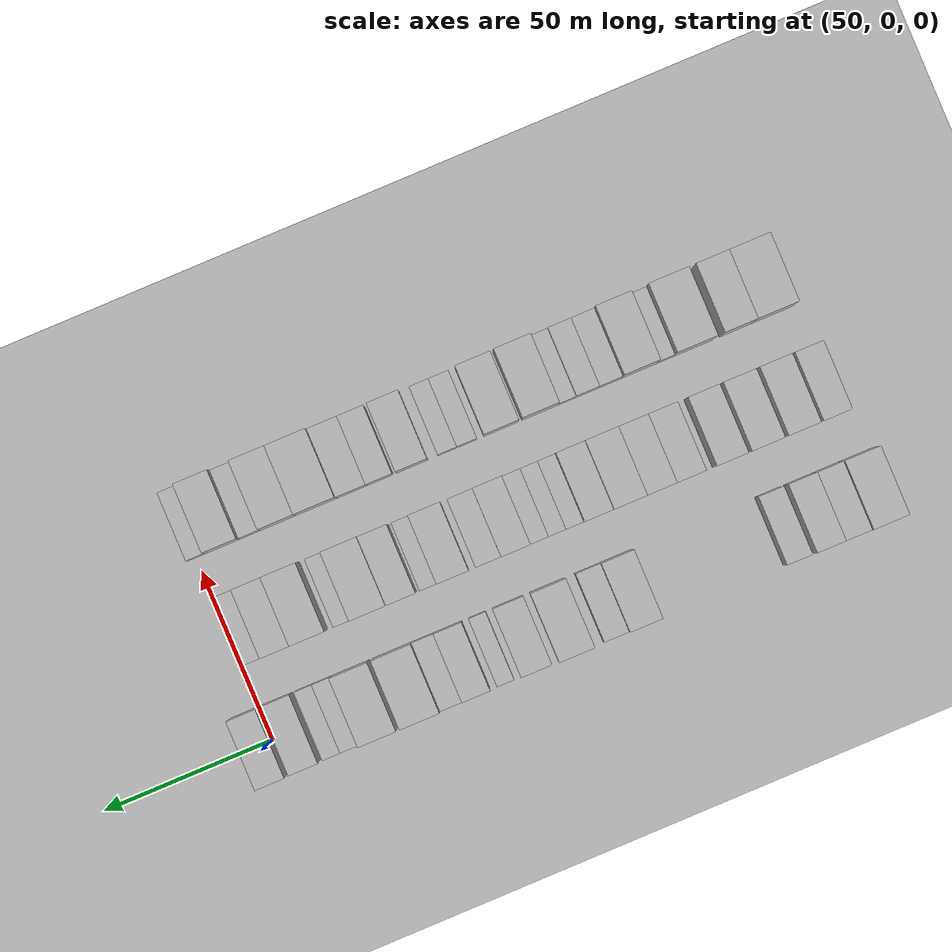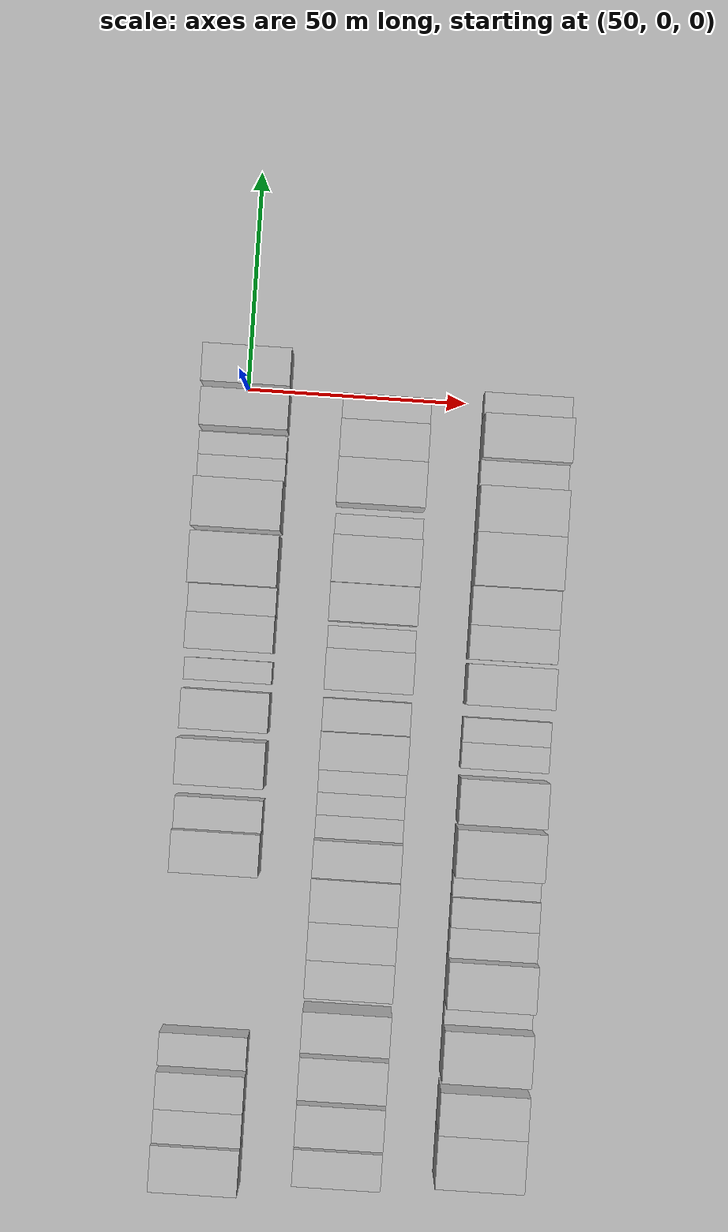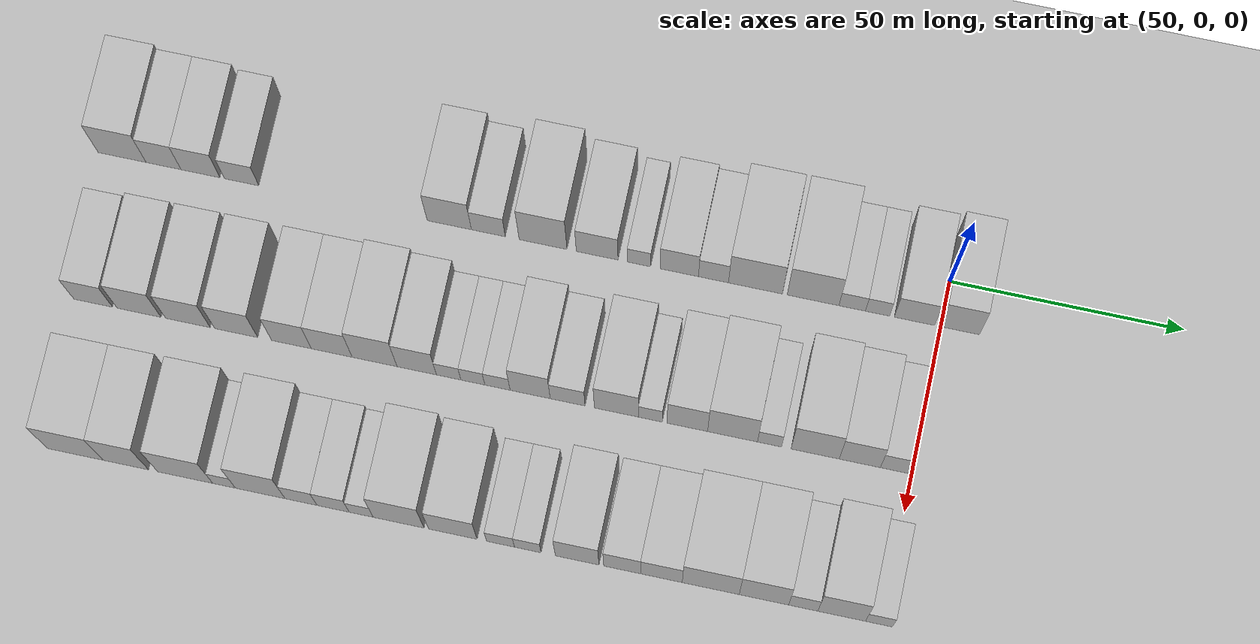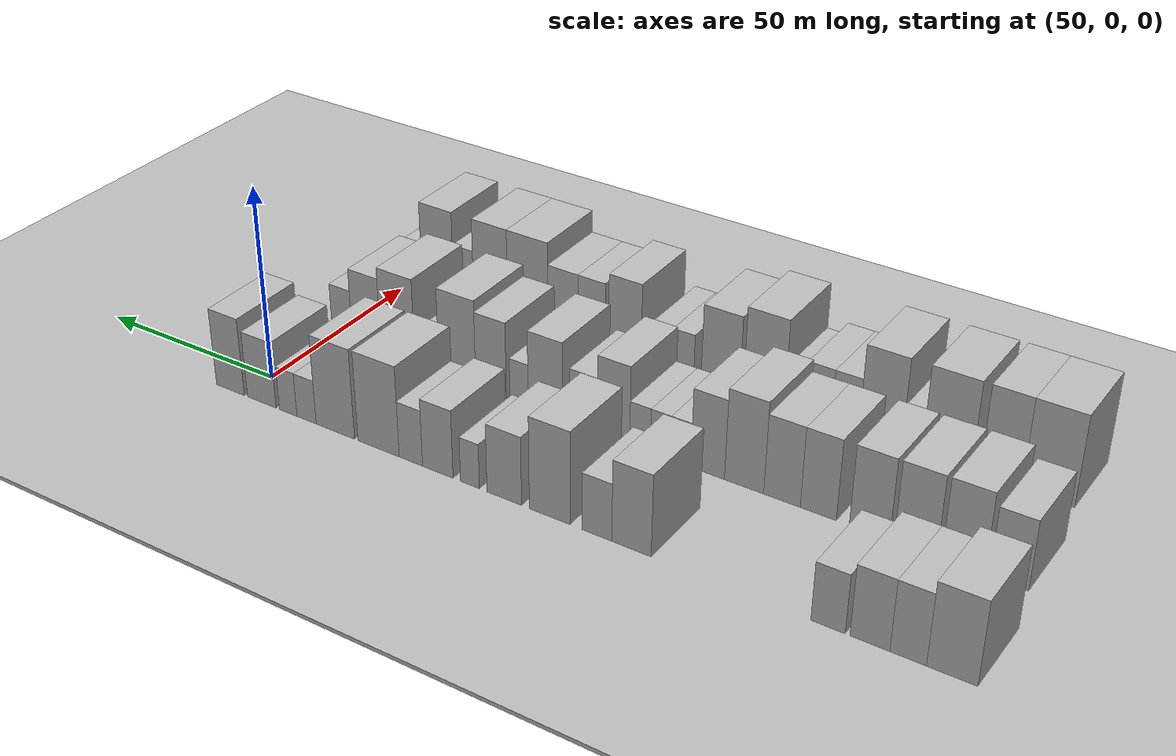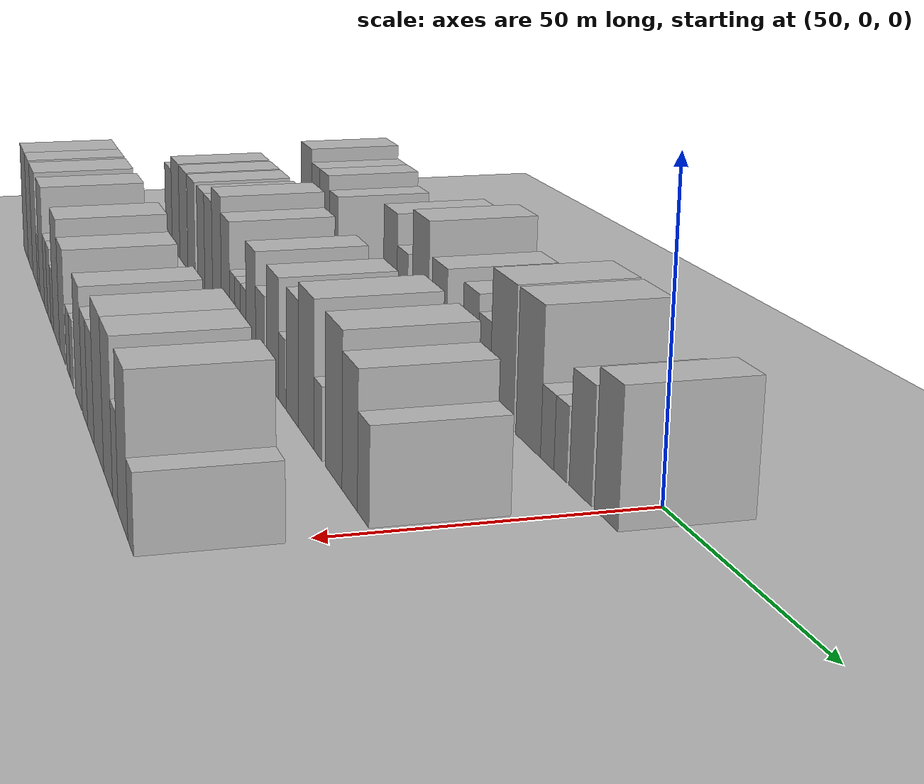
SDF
<sdf version="1.6">
 <world name="default">
  <include><name>ground_plane_1</name><uri>model://HANNAS_ground_plane</uri></include>
  <include>
   <name>ground_plane_2</name>
   <uri>model://HANNAS_ground_plane</uri>
   <pose>100 0 0  0 0 0</pose>
  </include>
  <model name="building_19">
   <static>1</static>
   <pose>50.0000 -176.8007 0 0.000000 0.000000 0.000000</pose>
   <link name="link">
    <pose>0 0 10.50 0 0 0</pose>
    <collision name="collision"><geometry><box><size>20.0000 10.4769 21.0000</size></box></geometry></collision>
    <visual name="visual">
     <cast_shadows>0</cast_shadows>
     <geometry><box><size>20.0000 10.4769 21.0000</size></box></geometry>
     <material>
      <script>
       <uri>model://HANNAS_wall/materials/scripts</uri>
       <uri>model://HANNAS_wall/materials/textures</uri>
       <name>vrc/HANNAS_wall</name>
      </script>
     </material>
    </visual>
   </link>
  </model>
  <model name="building_20">
   <static>1</static>
   <pose>50.0000 -167.7494 0 0.000000 0.000000 0.000000</pose>
   <link name="link">
    <pose>0 0 9.00 0 0 0</pose>
    <collision name="collision"><geometry><box><size>20.0000 7.6257 18.0000</size></box></geometry></collision>
    <visual name="visual">
     <cast_shadows>0</cast_shadows>
     <geometry><box><size>20.0000 7.6257 18.0000</size></box></geometry>
     <material>
      <script>
       <uri>model://HANNAS_wall/materials/scripts</uri>
       <uri>model://HANNAS_wall/materials/textures</uri>
       <name>vrc/HANNAS_wall</name>
      </script>
     </material>
    </visual>
   </link>
  </model>
  <model name="building_21">
   <static>1</static>
   <pose>50.0000 -159.7060 0 0.000000 0.000000 0.000000</pose>
   <link name="link">
    <pose>0 0 9.00 0 0 0</pose>
    <collision name="collision"><geometry><box><size>20.0000 8.4612 18.0000</size></box></geometry></collision>
    <visual name="visual">
     <cast_shadows>0</cast_shadows>
     <geometry><box><size>20.0000 8.4612 18.0000</size></box></geometry>
     <material>
      <script>
       <uri>model://HANNAS_wall/materials/scripts</uri>
       <uri>model://HANNAS_wall/materials/textures</uri>
       <name>vrc/HANNAS_wall</name>
      </script>
     </material>
    </visual>
   </link>
  </model>
  <model name="building_22">
   <static>1</static>
   <pose>50.0000 -150.7379 0 0.000000 0.000000 0.000000</pose>
   <link name="link">
    <pose>0 0 7.50 0 0 0</pose>
    <collision name="collision"><geometry><box><size>20.0000 7.4750 15.0000</size></box></geometry></collision>
    <visual name="visual">
     <cast_shadows>0</cast_shadows>
     <geometry><box><size>20.0000 7.4750 15.0000</size></box></geometry>
     <material>
      <script>
       <uri>model://HANNAS_wall/materials/scripts</uri>
       <uri>model://HANNAS_wall/materials/textures</uri>
       <name>vrc/HANNAS_wall</name>
      </script>
     </material>
    </visual>
   </link>
  </model>
  <model name="building_23">
   <static>1</static>
   <pose>50.0000 -105.6504 0 0.000000 0.000000 0.000000</pose>
   <link name="link">
    <pose>0 0 10.50 0 0 0</pose>
    <collision name="collision"><geometry><box><size>20.0000 9.5667 21.0000</size></box></geometry></collision>
    <visual name="visual">
     <cast_shadows>0</cast_shadows>
     <geometry><box><size>20.0000 9.5667 21.0000</size></box></geometry>
     <material>
      <script>
       <uri>model://HANNAS_wall/materials/scripts</uri>
       <uri>model://HANNAS_wall/materials/textures</uri>
       <name>vrc/HANNAS_wall</name>
      </script>
     </material>
    </visual>
   </link>
  </model>
  <model name="building_24">
   <static>1</static>
   <pose>50.0000 -97.2119 0 0.000000 0.000000 0.000000</pose>
   <link name="link">
    <pose>0 0 7.50 0 0 0</pose>
    <collision name="collision"><geometry><box><size>20.0000 7.3102 15.0000</size></box></geometry></collision>
    <visual name="visual">
     <cast_shadows>0</cast_shadows>
     <geometry><box><size>20.0000 7.3102 15.0000</size></box></geometry>
     <material>
      <script>
       <uri>model://HANNAS_wall/materials/scripts</uri>
       <uri>model://HANNAS_wall/materials/textures</uri>
       <name>vrc/HANNAS_wall</name>
      </script>
     </material>
    </visual>
   </link>
  </model>
  <model name="building_25">
   <static>1</static>
   <pose>50.0000 -85.3926 0 0.000000 0.000000 0.000000</pose>
   <link name="link">
    <pose>0 0 12.00 0 0 0</pose>
    <collision name="collision"><geometry><box><size>20.0000 10.3284 24.0000</size></box></geometry></collision>
    <visual name="visual">
     <cast_shadows>0</cast_shadows>
     <geometry><box><size>20.0000 10.3284 24.0000</size></box></geometry>
     <material>
      <script>
       <uri>model://HANNAS_wall/materials/scripts</uri>
       <uri>model://HANNAS_wall/materials/textures</uri>
       <name>vrc/HANNAS_wall</name>
      </script>
     </material>
    </visual>
   </link>
  </model>
  <model name="building_26">
   <static>1</static>
   <pose>50.0000 -73.7339 0 0.000000 0.000000 0.000000</pose>
   <link name="link">
    <pose>0 0 9.00 0 0 0</pose>
    <collision name="collision"><geometry><box><size>20.0000 8.9888 18.0000</size></box></geometry></collision>
    <visual name="visual">
     <cast_shadows>0</cast_shadows>
     <geometry><box><size>20.0000 8.9888 18.0000</size></box></geometry>
     <material>
      <script>
       <uri>model://HANNAS_wall/materials/scripts</uri>
       <uri>model://HANNAS_wall/materials/textures</uri>
       <name>vrc/HANNAS_wall</name>
      </script>
     </material>
    </visual>
   </link>
  </model>
  <model name="building_27">
   <static>1</static>
   <pose>50.0000 -64.7259 0 0.000000 0.000000 0.000000</pose>
   <link name="link">
    <pose>0 0 6.00 0 0 0</pose>
    <collision name="collision"><geometry><box><size>20.0000 5.0272 12.0000</size></box></geometry></collision>
    <visual name="visual">
     <cast_shadows>0</cast_shadows>
     <geometry><box><size>20.0000 5.0272 12.0000</size></box></geometry>
     <material>
      <script>
       <uri>model://HANNAS_wall/materials/scripts</uri>
       <uri>model://HANNAS_wall/materials/textures</uri>
       <name>vrc/HANNAS_wall</name>
      </script>
     </material>
    </visual>
   </link>
  </model>
  <model name="building_28">
   <static>1</static>
   <pose>50.0000 -56.0772 0 0.000000 0.000000 0.000000</pose>
   <link name="link">
    <pose>0 0 9.00 0 0 0</pose>
    <collision name="collision"><geometry><box><size>20.0000 8.2703 18.0000</size></box></geometry></collision>
    <visual name="visual">
     <cast_shadows>0</cast_shadows>
     <geometry><box><size>20.0000 8.2703 18.0000</size></box></geometry>
     <material>
      <script>
       <uri>model://HANNAS_wall/materials/scripts</uri>
       <uri>model://HANNAS_wall/materials/textures</uri>
       <name>vrc/HANNAS_wall</name>
      </script>
     </material>
    </visual>
   </link>
  </model>
  <model name="building_29">
   <static>1</static>
   <pose>50.0000 -48.7248 0 0.000000 0.000000 0.000000</pose>
   <link name="link">
    <pose>0 0 7.50 0 0 0</pose>
    <collision name="collision"><geometry><box><size>20.0000 6.4346 15.0000</size></box></geometry></collision>
    <visual name="visual">
     <cast_shadows>0</cast_shadows>
     <geometry><box><size>20.0000 6.4346 15.0000</size></box></geometry>
     <material>
      <script>
       <uri>model://HANNAS_wall/materials/scripts</uri>
       <uri>model://HANNAS_wall/materials/textures</uri>
       <name>vrc/HANNAS_wall</name>
      </script>
     </material>
    </visual>
   </link>
  </model>
  <model name="building_30">
   <static>1</static>
   <pose>50.0000 -39.7111 0 0.000000 0.000000 0.000000</pose>
   <link name="link">
    <pose>0 0 12.00 0 0 0</pose>
    <collision name="collision"><geometry><box><size>20.0000 11.5926 24.0000</size></box></geometry></collision>
    <visual name="visual">
     <cast_shadows>0</cast_shadows>
     <geometry><box><size>20.0000 11.5926 24.0000</size></box></geometry>
     <material>
      <script>
       <uri>model://HANNAS_wall/materials/scripts</uri>
       <uri>model://HANNAS_wall/materials/textures</uri>
       <name>vrc/HANNAS_wall</name>
      </script>
     </material>
    </visual>
   </link>
  </model>
  <model name="building_31">
   <static>1</static>
   <pose>50.0000 -27.3773 0 0.000000 0.000000 0.000000</pose>
   <link name="link">
    <pose>0 0 12.00 0 0 0</pose>
    <collision name="collision"><geometry><box><size>20.0000 11.0751 24.0000</size></box></geometry></collision>
    <visual name="visual">
     <cast_shadows>0</cast_shadows>
     <geometry><box><size>20.0000 11.0751 24.0000</size></box></geometry>
     <material>
      <script>
       <uri>model://HANNAS_wall/materials/scripts</uri>
       <uri>model://HANNAS_wall/materials/textures</uri>
       <name>vrc/HANNAS_wall</name>
      </script>
     </material>
    </visual>
   </link>
  </model>
  <model name="building_32">
   <static>1</static>
   <pose>50.0000 -19.0092 0 0.000000 0.000000 0.000000</pose>
   <link name="link">
    <pose>0 0 6.00 0 0 0</pose>
    <collision name="collision"><geometry><box><size>20.0000 5.6609 12.0000</size></box></geometry></collision>
    <visual name="visual">
     <cast_shadows>0</cast_shadows>
     <geometry><box><size>20.0000 5.6609 12.0000</size></box></geometry>
     <material>
      <script>
       <uri>model://HANNAS_wall/materials/scripts</uri>
       <uri>model://HANNAS_wall/materials/textures</uri>
       <name>vrc/HANNAS_wall</name>
      </script>
     </material>
    </visual>
   </link>
  </model>
  <model name="building_33">
   <static>1</static>
   <pose>50.0000 -13.5868 0 0.000000 0.000000 0.000000</pose>
   <link name="link">
    <pose>0 0 6.00 0 0 0</pose>
    <collision name="collision"><geometry><box><size>20.0000 5.1841 12.0000</size></box></geometry></collision>
    <visual name="visual">
     <cast_shadows>0</cast_shadows>
     <geometry><box><size>20.0000 5.1841 12.0000</size></box></geometry>
     <material>
      <script>
       <uri>model://HANNAS_wall/materials/scripts</uri>
       <uri>model://HANNAS_wall/materials/textures</uri>
       <name>vrc/HANNAS_wall</name>
      </script>
     </material>
    </visual>
   </link>
  </model>
  <model name="building_34">
   <static>1</static>
   <pose>50.0000 -5.6855 0 0.000000 0.000000 0.000000</pose>
   <link name="link">
    <pose>0 0 9.00 0 0 0</pose>
    <collision name="collision"><geometry><box><size>20.0000 8.6185 18.0000</size></box></geometry></collision>
    <visual name="visual">
     <cast_shadows>0</cast_shadows>
     <geometry><box><size>20.0000 8.6185 18.0000</size></box></geometry>
     <material>
      <script>
       <uri>model://HANNAS_wall/materials/scripts</uri>
       <uri>model://HANNAS_wall/materials/textures</uri>
       <name>vrc/HANNAS_wall</name>
      </script>
     </material>
    </visual>
   </link>
  </model>
  <model name="building_35">
   <static>1</static>
   <pose>50.0000 3.8920 0 0.000000 0.000000 0.000000</pose>
   <link name="link">
    <pose>0 0 10.50 0 0 0</pose>
    <collision name="collision"><geometry><box><size>20.0000 8.5365 21.0000</size></box></geometry></collision>
    <visual name="visual">
     <cast_shadows>0</cast_shadows>
     <geometry><box><size>20.0000 8.5365 21.0000</size></box></geometry>
     <material>
      <script>
       <uri>model://HANNAS_wall/materials/scripts</uri>
       <uri>model://HANNAS_wall/materials/textures</uri>
       <name>vrc/HANNAS_wall</name>
      </script>
     </material>
    </visual>
   </link>
  </model>
  <model name="building_96">
   <static>1</static>
   <pose>82.0000 -175.0363 0 0.000000 0.000000 0.000000</pose>
   <link name="link">
    <pose>0 0 9.00 0 0 0</pose>
    <collision name="collision"><geometry><box><size>20.0000 8.3634 18.0000</size></box></geometry></collision>
    <visual name="visual">
     <cast_shadows>0</cast_shadows>
     <geometry><box><size>20.0000 8.3634 18.0000</size></box></geometry>
     <material>
      <script>
       <uri>model://HANNAS_wall/materials/scripts</uri>
       <uri>model://HANNAS_wall/materials/textures</uri>
       <name>vrc/HANNAS_wall</name>
      </script>
     </material>
    </visual>
   </link>
  </model>
  <model name="building_97">
   <static>1</static>
   <pose>82.0000 -165.1223 0 0.000000 0.000000 0.000000</pose>
   <link name="link">
    <pose>0 0 10.50 0 0 0</pose>
    <collision name="collision"><geometry><box><size>20.0000 9.4647 21.0000</size></box></geometry></collision>
    <visual name="visual">
     <cast_shadows>0</cast_shadows>
     <geometry><box><size>20.0000 9.4647 21.0000</size></box></geometry>
     <material>
      <script>
       <uri>model://HANNAS_wall/materials/scripts</uri>
       <uri>model://HANNAS_wall/materials/textures</uri>
       <name>vrc/HANNAS_wall</name>
      </script>
     </material>
    </visual>
   </link>
  </model>
  <model name="building_98">
   <static>1</static>
   <pose>82.0000 -154.5868 0 0.000000 0.000000 0.000000</pose>
   <link name="link">
    <pose>0 0 10.50 0 0 0</pose>
    <collision name="collision"><geometry><box><size>20.0000 9.6063 21.0000</size></box></geometry></collision>
    <visual name="visual">
     <cast_shadows>0</cast_shadows>
     <geometry><box><size>20.0000 9.6063 21.0000</size></box></geometry>
     <material>
      <script>
       <uri>model://HANNAS_wall/materials/scripts</uri>
       <uri>model://HANNAS_wall/materials/textures</uri>
       <name>vrc/HANNAS_wall</name>
      </script>
     </material>
    </visual>
   </link>
  </model>
  <model name="building_99">
   <static>1</static>
   <pose>82.0000 -144.1634 0 0.000000 0.000000 0.000000</pose>
   <link name="link">
    <pose>0 0 10.50 0 0 0</pose>
    <collision name="collision"><geometry><box><size>20.0000 9.2406 21.0000</size></box></geometry></collision>
    <visual name="visual">
     <cast_shadows>0</cast_shadows>
     <geometry><box><size>20.0000 9.2406 21.0000</size></box></geometry>
     <material>
      <script>
       <uri>model://HANNAS_wall/materials/scripts</uri>
       <uri>model://HANNAS_wall/materials/textures</uri>
       <name>vrc/HANNAS_wall</name>
      </script>
     </material>
    </visual>
   </link>
  </model>
  <model name="building_100">
   <static>1</static>
   <pose>82.0000 -132.2857 0 0.000000 0.000000 0.000000</pose>
   <link name="link">
    <pose>0 0 10.50 0 0 0</pose>
    <collision name="collision"><geometry><box><size>20.0000 8.5148 21.0000</size></box></geometry></collision>
    <visual name="visual">
     <cast_shadows>0</cast_shadows>
     <geometry><box><size>20.0000 8.5148 21.0000</size></box></geometry>
     <material>
      <script>
       <uri>model://HANNAS_wall/materials/scripts</uri>
       <uri>model://HANNAS_wall/materials/textures</uri>
       <name>vrc/HANNAS_wall</name>
      </script>
     </material>
    </visual>
   </link>
  </model>
  <model name="building_101">
   <static>1</static>
   <pose>82.0000 -123.6333 0 0.000000 0.000000 0.000000</pose>
   <link name="link">
    <pose>0 0 10.50 0 0 0</pose>
    <collision name="collision"><geometry><box><size>20.0000 8.7900 21.0000</size></box></geometry></collision>
    <visual name="visual">
     <cast_shadows>0</cast_shadows>
     <geometry><box><size>20.0000 8.7900 21.0000</size></box></geometry>
     <material>
      <script>
       <uri>model://HANNAS_wall/materials/scripts</uri>
       <uri>model://HANNAS_wall/materials/textures</uri>
       <name>vrc/HANNAS_wall</name>
      </script>
     </material>
    </visual>
   </link>
  </model>
  <model name="building_102">
   <static>1</static>
   <pose>82.0000 -114.4189 0 0.000000 0.000000 0.000000</pose>
   <link name="link">
    <pose>0 0 12.00 0 0 0</pose>
    <collision name="collision"><geometry><box><size>20.0000 9.6388 24.0000</size></box></geometry></collision>
    <visual name="visual">
     <cast_shadows>0</cast_shadows>
     <geometry><box><size>20.0000 9.6388 24.0000</size></box></geometry>
     <material>
      <script>
       <uri>model://HANNAS_wall/materials/scripts</uri>
       <uri>model://HANNAS_wall/materials/textures</uri>
       <name>vrc/HANNAS_wall</name>
      </script>
     </material>
    </visual>
   </link>
  </model>
  <model name="building_103">
   <static>1</static>
   <pose>82.0000 -105.3723 0 0.000000 0.000000 0.000000</pose>
   <link name="link">
    <pose>0 0 10.50 0 0 0</pose>
    <collision name="collision"><geometry><box><size>20.0000 8.4544 21.0000</size></box></geometry></collision>
    <visual name="visual">
     <cast_shadows>0</cast_shadows>
     <geometry><box><size>20.0000 8.4544 21.0000</size></box></geometry>
     <material>
      <script>
       <uri>model://HANNAS_wall/materials/scripts</uri>
       <uri>model://HANNAS_wall/materials/textures</uri>
       <name>vrc/HANNAS_wall</name>
      </script>
     </material>
    </visual>
   </link>
  </model>
  <model name="building_104">
   <static>1</static>
   <pose>82.0000 -98.5314 0 0.000000 0.000000 0.000000</pose>
   <link name="link">
    <pose>0 0 6.00 0 0 0</pose>
    <collision name="collision"><geometry><box><size>20.0000 5.2274 12.0000</size></box></geometry></collision>
    <visual name="visual">
     <cast_shadows>0</cast_shadows>
     <geometry><box><size>20.0000 5.2274 12.0000</size></box></geometry>
     <material>
      <script>
       <uri>model://HANNAS_wall/materials/scripts</uri>
       <uri>model://HANNAS_wall/materials/textures</uri>
       <name>vrc/HANNAS_wall</name>
      </script>
     </material>
    </visual>
   </link>
  </model>
  <model name="building_105">
   <static>1</static>
   <pose>82.0000 -93.3625 0 0.000000 0.000000 0.000000</pose>
   <link name="link">
    <pose>0 0 6.00 0 0 0</pose>
    <collision name="collision"><geometry><box><size>20.0000 5.1104 12.0000</size></box></geometry></collision>
    <visual name="visual">
     <cast_shadows>0</cast_shadows>
     <geometry><box><size>20.0000 5.1104 12.0000</size></box></geometry>
     <material>
      <script>
       <uri>model://HANNAS_wall/materials/scripts</uri>
       <uri>model://HANNAS_wall/materials/textures</uri>
       <name>vrc/HANNAS_wall</name>
      </script>
     </material>
    </visual>
   </link>
  </model>
  <model name="building_106">
   <static>1</static>
   <pose>82.0000 -88.1017 0 0.000000 0.000000 0.000000</pose>
   <link name="link">
    <pose>0 0 6.00 0 0 0</pose>
    <collision name="collision"><geometry><box><size>20.0000 5.4112 12.0000</size></box></geometry></collision>
    <visual name="visual">
     <cast_shadows>0</cast_shadows>
     <geometry><box><size>20.0000 5.4112 12.0000</size></box></geometry>
     <material>
      <script>
       <uri>model://HANNAS_wall/materials/scripts</uri>
       <uri>model://HANNAS_wall/materials/textures</uri>
       <name>vrc/HANNAS_wall</name>
      </script>
     </material>
    </visual>
   </link>
  </model>
  <model name="building_107">
   <static>1</static>
   <pose>82.0000 -81.1191 0 0.000000 0.000000 0.000000</pose>
   <link name="link">
    <pose>0 0 10.50 0 0 0</pose>
    <collision name="collision"><geometry><box><size>20.0000 8.5541 21.0000</size></box></geometry></collision>
    <visual name="visual">
     <cast_shadows>0</cast_shadows>
     <geometry><box><size>20.0000 8.5541 21.0000</size></box></geometry>
     <material>
      <script>
       <uri>model://HANNAS_wall/materials/scripts</uri>
       <uri>model://HANNAS_wall/materials/textures</uri>
       <name>vrc/HANNAS_wall</name>
      </script>
     </material>
    </visual>
   </link>
  </model>
  <model name="building_108">
   <static>1</static>
   <pose>82.0000 -73.1270 0 0.000000 0.000000 0.000000</pose>
   <link name="link">
    <pose>0 0 7.50 0 0 0</pose>
    <collision name="collision"><geometry><box><size>20.0000 7.4301 15.0000</size></box></geometry></collision>
    <visual name="visual">
     <cast_shadows>0</cast_shadows>
     <geometry><box><size>20.0000 7.4301 15.0000</size></box></geometry>
     <material>
      <script>
       <uri>model://HANNAS_wall/materials/scripts</uri>
       <uri>model://HANNAS_wall/materials/textures</uri>
       <name>vrc/HANNAS_wall</name>
      </script>
     </material>
    </visual>
   </link>
  </model>
  <model name="building_109">
   <static>1</static>
   <pose>82.0000 -62.7336 0 0.000000 0.000000 0.000000</pose>
   <link name="link">
    <pose>0 0 10.50 0 0 0</pose>
    <collision name="collision"><geometry><box><size>20.0000 9.3566 21.0000</size></box></geometry></collision>
    <visual name="visual">
     <cast_shadows>0</cast_shadows>
     <geometry><box><size>20.0000 9.3566 21.0000</size></box></geometry>
     <material>
      <script>
       <uri>model://HANNAS_wall/materials/scripts</uri>
       <uri>model://HANNAS_wall/materials/textures</uri>
       <name>vrc/HANNAS_wall</name>
      </script>
     </material>
    </visual>
   </link>
  </model>
  <model name="building_110">
   <static>1</static>
   <pose>82.0000 -55.5170 0 0.000000 0.000000 0.000000</pose>
   <link name="link">
    <pose>0 0 6.00 0 0 0</pose>
    <collision name="collision"><geometry><box><size>20.0000 5.0767 12.0000</size></box></geometry></collision>
    <visual name="visual">
     <cast_shadows>0</cast_shadows>
     <geometry><box><size>20.0000 5.0767 12.0000</size></box></geometry>
     <material>
      <script>
       <uri>model://HANNAS_wall/materials/scripts</uri>
       <uri>model://HANNAS_wall/materials/textures</uri>
       <name>vrc/HANNAS_wall</name>
      </script>
     </material>
    </visual>
   </link>
  </model>
  <model name="building_111">
   <static>1</static>
   <pose>82.0000 -47.6541 0 0.000000 0.000000 0.000000</pose>
   <link name="link">
    <pose>0 0 10.50 0 0 0</pose>
    <collision name="collision"><geometry><box><size>20.0000 8.6492 21.0000</size></box></geometry></collision>
    <visual name="visual">
     <cast_shadows>0</cast_shadows>
     <geometry><box><size>20.0000 8.6492 21.0000</size></box></geometry>
     <material>
      <script>
       <uri>model://HANNAS_wall/materials/scripts</uri>
       <uri>model://HANNAS_wall/materials/textures</uri>
       <name>vrc/HANNAS_wall</name>
      </script>
     </material>
    </visual>
   </link>
  </model>
  <model name="building_112">
   <static>1</static>
   <pose>82.0000 -38.0408 0 0.000000 0.000000 0.000000</pose>
   <link name="link">
    <pose>0 0 12.00 0 0 0</pose>
    <collision name="collision"><geometry><box><size>20.0000 10.5772 24.0000</size></box></geometry></collision>
    <visual name="visual">
     <cast_shadows>0</cast_shadows>
     <geometry><box><size>20.0000 10.5772 24.0000</size></box></geometry>
     <material>
      <script>
       <uri>model://HANNAS_wall/materials/scripts</uri>
       <uri>model://HANNAS_wall/materials/textures</uri>
       <name>vrc/HANNAS_wall</name>
      </script>
     </material>
    </visual>
   </link>
  </model>
  <model name="building_113">
   <static>1</static>
   <pose>82.0000 -30.1926 0 0.000000 0.000000 0.000000</pose>
   <link name="link">
    <pose>0 0 6.00 0 0 0</pose>
    <collision name="collision"><geometry><box><size>20.0000 5.1192 12.0000</size></box></geometry></collision>
    <visual name="visual">
     <cast_shadows>0</cast_shadows>
     <geometry><box><size>20.0000 5.1192 12.0000</size></box></geometry>
     <material>
      <script>
       <uri>model://HANNAS_wall/materials/scripts</uri>
       <uri>model://HANNAS_wall/materials/textures</uri>
       <name>vrc/HANNAS_wall</name>
      </script>
     </material>
    </visual>
   </link>
  </model>
  <model name="building_114">
   <static>1</static>
   <pose>82.0000 -20.5307 0 0.000000 0.000000 0.000000</pose>
   <link name="link">
    <pose>0 0 12.00 0 0 0</pose>
    <collision name="collision"><geometry><box><size>20.0000 10.2048 24.0000</size></box></geometry></collision>
    <visual name="visual">
     <cast_shadows>0</cast_shadows>
     <geometry><box><size>20.0000 10.2048 24.0000</size></box></geometry>
     <material>
      <script>
       <uri>model://HANNAS_wall/materials/scripts</uri>
       <uri>model://HANNAS_wall/materials/textures</uri>
       <name>vrc/HANNAS_wall</name>
      </script>
     </material>
    </visual>
   </link>
  </model>
  <model name="building_115">
   <static>1</static>
   <pose>82.0000 -11.0730 0 0.000000 0.000000 0.000000</pose>
   <link name="link">
    <pose>0 0 10.50 0 0 0</pose>
    <collision name="collision"><geometry><box><size>20.0000 8.7106 21.0000</size></box></geometry></collision>
    <visual name="visual">
     <cast_shadows>0</cast_shadows>
     <geometry><box><size>20.0000 8.7106 21.0000</size></box></geometry>
     <material>
      <script>
       <uri>model://HANNAS_wall/materials/scripts</uri>
       <uri>model://HANNAS_wall/materials/textures</uri>
       <name>vrc/HANNAS_wall</name>
      </script>
     </material>
    </visual>
   </link>
  </model>
  <model name="building_116">
   <static>1</static>
   <pose>82.0000 -3.6223 0 0.000000 0.000000 0.000000</pose>
   <link name="link">
    <pose>0 0 7.50 0 0 0</pose>
    <collision name="collision"><geometry><box><size>20.0000 6.1908 15.0000</size></box></geometry></collision>
    <visual name="visual">
     <cast_shadows>0</cast_shadows>
     <geometry><box><size>20.0000 6.1908 15.0000</size></box></geometry>
     <material>
      <script>
       <uri>model://HANNAS_wall/materials/scripts</uri>
       <uri>model://HANNAS_wall/materials/textures</uri>
       <name>vrc/HANNAS_wall</name>
      </script>
     </material>
    </visual>
   </link>
  </model>
  <model name="building_175">
   <static>1</static>
   <pose>114.0000 -170.7426 0 0.000000 0.000000 0.000000</pose>
   <link name="link">
    <pose>0 0 12.00 0 0 0</pose>
    <collision name="collision"><geometry><box><size>20.0000 11.9122 24.0000</size></box></geometry></collision>
    <visual name="visual">
     <cast_shadows>0</cast_shadows>
     <geometry><box><size>20.0000 11.9122 24.0000</size></box></geometry>
     <material>
      <script>
       <uri>model://HANNAS_wall/materials/scripts</uri>
       <uri>model://HANNAS_wall/materials/textures</uri>
       <name>vrc/HANNAS_wall</name>
      </script>
     </material>
    </visual>
   </link>
  </model>
  <model name="building_176">
   <static>1</static>
   <pose>114.0000 -159.9750 0 0.000000 0.000000 0.000000</pose>
   <link name="link">
    <pose>0 0 12.00 0 0 0</pose>
    <collision name="collision"><geometry><box><size>20.0000 9.6231 24.0000</size></box></geometry></collision>
    <visual name="visual">
     <cast_shadows>0</cast_shadows>
     <geometry><box><size>20.0000 9.6231 24.0000</size></box></geometry>
     <material>
      <script>
       <uri>model://HANNAS_wall/materials/scripts</uri>
       <uri>model://HANNAS_wall/materials/textures</uri>
       <name>vrc/HANNAS_wall</name>
      </script>
     </material>
    </visual>
   </link>
  </model>
  <model name="building_177">
   <static>1</static>
   <pose>114.0000 -147.2838 0 0.000000 0.000000 0.000000</pose>
   <link name="link">
    <pose>0 0 12.00 0 0 0</pose>
    <collision name="collision"><geometry><box><size>20.0000 11.7592 24.0000</size></box></geometry></collision>
    <visual name="visual">
     <cast_shadows>0</cast_shadows>
     <geometry><box><size>20.0000 11.7592 24.0000</size></box></geometry>
     <material>
      <script>
       <uri>model://HANNAS_wall/materials/scripts</uri>
       <uri>model://HANNAS_wall/materials/textures</uri>
       <name>vrc/HANNAS_wall</name>
      </script>
     </material>
    </visual>
   </link>
  </model>
  <model name="building_178">
   <static>1</static>
   <pose>114.0000 -138.9912 0 0.000000 0.000000 0.000000</pose>
   <link name="link">
    <pose>0 0 6.00 0 0 0</pose>
    <collision name="collision"><geometry><box><size>20.0000 4.8261 12.0000</size></box></geometry></collision>
    <visual name="visual">
     <cast_shadows>0</cast_shadows>
     <geometry><box><size>20.0000 4.8261 12.0000</size></box></geometry>
     <material>
      <script>
       <uri>model://HANNAS_wall/materials/scripts</uri>
       <uri>model://HANNAS_wall/materials/textures</uri>
       <name>vrc/HANNAS_wall</name>
      </script>
     </material>
    </visual>
   </link>
  </model>
  <model name="building_179">
   <static>1</static>
   <pose>114.0000 -131.2988 0 0.000000 0.000000 0.000000</pose>
   <link name="link">
    <pose>0 0 12.00 0 0 0</pose>
    <collision name="collision"><geometry><box><size>20.0000 10.5587 24.0000</size></box></geometry></collision>
    <visual name="visual">
     <cast_shadows>0</cast_shadows>
     <geometry><box><size>20.0000 10.5587 24.0000</size></box></geometry>
     <material>
      <script>
       <uri>model://HANNAS_wall/materials/scripts</uri>
       <uri>model://HANNAS_wall/materials/textures</uri>
       <name>vrc/HANNAS_wall</name>
      </script>
     </material>
    </visual>
   </link>
  </model>
  <model name="building_180">
   <static>1</static>
   <pose>114.0000 -122.6162 0 0.000000 0.000000 0.000000</pose>
   <link name="link">
    <pose>0 0 7.50 0 0 0</pose>
    <collision name="collision"><geometry><box><size>20.0000 6.8065 15.0000</size></box></geometry></collision>
    <visual name="visual">
     <cast_shadows>0</cast_shadows>
     <geometry><box><size>20.0000 6.8065 15.0000</size></box></geometry>
     <material>
      <script>
       <uri>model://HANNAS_wall/materials/scripts</uri>
       <uri>model://HANNAS_wall/materials/textures</uri>
       <name>vrc/HANNAS_wall</name>
      </script>
     </material>
    </visual>
   </link>
  </model>
  <model name="building_181">
   <static>1</static>
   <pose>114.0000 -115.8090 0 0.000000 0.000000 0.000000</pose>
   <link name="link">
    <pose>0 0 7.50 0 0 0</pose>
    <collision name="collision"><geometry><box><size>20.0000 6.8078 15.0000</size></box></geometry></collision>
    <visual name="visual">
     <cast_shadows>0</cast_shadows>
     <geometry><box><size>20.0000 6.8078 15.0000</size></box></geometry>
     <material>
      <script>
       <uri>model://HANNAS_wall/materials/scripts</uri>
       <uri>model://HANNAS_wall/materials/textures</uri>
       <name>vrc/HANNAS_wall</name>
      </script>
     </material>
    </visual>
   </link>
  </model>
  <model name="building_182">
   <static>1</static>
   <pose>114.0000 -109.8441 0 0.000000 0.000000 0.000000</pose>
   <link name="link">
    <pose>0 0 6.00 0 0 0</pose>
    <collision name="collision"><geometry><box><size>20.0000 5.1221 12.0000</size></box></geometry></collision>
    <visual name="visual">
     <cast_shadows>0</cast_shadows>
     <geometry><box><size>20.0000 5.1221 12.0000</size></box></geometry>
     <material>
      <script>
       <uri>model://HANNAS_wall/materials/scripts</uri>
       <uri>model://HANNAS_wall/materials/textures</uri>
       <name>vrc/HANNAS_wall</name>
      </script>
     </material>
    </visual>
   </link>
  </model>
  <model name="building_183">
   <static>1</static>
   <pose>114.0000 -101.9040 0 0.000000 0.000000 0.000000</pose>
   <link name="link">
    <pose>0 0 12.00 0 0 0</pose>
    <collision name="collision"><geometry><box><size>20.0000 10.7579 24.0000</size></box></geometry></collision>
    <visual name="visual">
     <cast_shadows>0</cast_shadows>
     <geometry><box><size>20.0000 10.7579 24.0000</size></box></geometry>
     <material>
      <script>
       <uri>model://HANNAS_wall/materials/scripts</uri>
       <uri>model://HANNAS_wall/materials/textures</uri>
       <name>vrc/HANNAS_wall</name>
      </script>
     </material>
    </visual>
   </link>
  </model>
  <model name="building_184">
   <static>1</static>
   <pose>114.0000 -90.3985 0 0.000000 0.000000 0.000000</pose>
   <link name="link">
    <pose>0 0 10.50 0 0 0</pose>
    <collision name="collision"><geometry><box><size>20.0000 10.2532 21.0000</size></box></geometry></collision>
    <visual name="visual">
     <cast_shadows>0</cast_shadows>
     <geometry><box><size>20.0000 10.2532 21.0000</size></box></geometry>
     <material>
      <script>
       <uri>model://HANNAS_wall/materials/scripts</uri>
       <uri>model://HANNAS_wall/materials/textures</uri>
       <name>vrc/HANNAS_wall</name>
      </script>
     </material>
    </visual>
   </link>
  </model>
  <model name="building_185">
   <static>1</static>
   <pose>114.0000 -80.3225 0 0.000000 0.000000 0.000000</pose>
   <link name="link">
    <pose>0 0 6.00 0 0 0</pose>
    <collision name="collision"><geometry><box><size>20.0000 5.8989 12.0000</size></box></geometry></collision>
    <visual name="visual">
     <cast_shadows>0</cast_shadows>
     <geometry><box><size>20.0000 5.8989 12.0000</size></box></geometry>
     <material>
      <script>
       <uri>model://HANNAS_wall/materials/scripts</uri>
       <uri>model://HANNAS_wall/materials/textures</uri>
       <name>vrc/HANNAS_wall</name>
      </script>
     </material>
    </visual>
   </link>
  </model>
  <model name="building_186">
   <static>1</static>
   <pose>114.0000 -74.5628 0 0.000000 0.000000 0.000000</pose>
   <link name="link">
    <pose>0 0 6.00 0 0 0</pose>
    <collision name="collision"><geometry><box><size>20.0000 5.6205 12.0000</size></box></geometry></collision>
    <visual name="visual">
     <cast_shadows>0</cast_shadows>
     <geometry><box><size>20.0000 5.6205 12.0000</size></box></geometry>
     <material>
      <script>
       <uri>model://HANNAS_wall/materials/scripts</uri>
       <uri>model://HANNAS_wall/materials/textures</uri>
       <name>vrc/HANNAS_wall</name>
      </script>
     </material>
    </visual>
   </link>
  </model>
  <model name="building_187">
   <static>1</static>
   <pose>114.0000 -64.1477 0 0.000000 0.000000 0.000000</pose>
   <link name="link">
    <pose>0 0 10.50 0 0 0</pose>
    <collision name="collision"><geometry><box><size>20.0000 9.2096 21.0000</size></box></geometry></collision>
    <visual name="visual">
     <cast_shadows>0</cast_shadows>
     <geometry><box><size>20.0000 9.2096 21.0000</size></box></geometry>
     <material>
      <script>
       <uri>model://HANNAS_wall/materials/scripts</uri>
       <uri>model://HANNAS_wall/materials/textures</uri>
       <name>vrc/HANNAS_wall</name>
      </script>
     </material>
    </visual>
   </link>
  </model>
  <model name="building_188">
   <static>1</static>
   <pose>114.0000 -54.6739 0 0.000000 0.000000 0.000000</pose>
   <link name="link">
    <pose>0 0 9.00 0 0 0</pose>
    <collision name="collision"><geometry><box><size>20.0000 7.7380 18.0000</size></box></geometry></collision>
    <visual name="visual">
     <cast_shadows>0</cast_shadows>
     <geometry><box><size>20.0000 7.7380 18.0000</size></box></geometry>
     <material>
      <script>
       <uri>model://HANNAS_wall/materials/scripts</uri>
       <uri>model://HANNAS_wall/materials/textures</uri>
       <name>vrc/HANNAS_wall</name>
      </script>
     </material>
    </visual>
   </link>
  </model>
  <model name="building_189">
   <static>1</static>
   <pose>114.0000 -46.4164 0 0.000000 0.000000 0.000000</pose>
   <link name="link">
    <pose>0 0 9.00 0 0 0</pose>
    <collision name="collision"><geometry><box><size>20.0000 8.7769 18.0000</size></box></geometry></collision>
    <visual name="visual">
     <cast_shadows>0</cast_shadows>
     <geometry><box><size>20.0000 8.7769 18.0000</size></box></geometry>
     <material>
      <script>
       <uri>model://HANNAS_wall/materials/scripts</uri>
       <uri>model://HANNAS_wall/materials/textures</uri>
       <name>vrc/HANNAS_wall</name>
      </script>
     </material>
    </visual>
   </link>
  </model>
  <model name="building_190">
   <static>1</static>
   <pose>114.0000 -36.0393 0 0.000000 0.000000 0.000000</pose>
   <link name="link">
    <pose>0 0 12.00 0 0 0</pose>
    <collision name="collision"><geometry><box><size>20.0000 11.9773 24.0000</size></box></geometry></collision>
    <visual name="visual">
     <cast_shadows>0</cast_shadows>
     <geometry><box><size>20.0000 11.9773 24.0000</size></box></geometry>
     <material>
      <script>
       <uri>model://HANNAS_wall/materials/scripts</uri>
       <uri>model://HANNAS_wall/materials/textures</uri>
       <name>vrc/HANNAS_wall</name>
      </script>
     </material>
    </visual>
   </link>
  </model>
  <model name="building_191">
   <static>1</static>
   <pose>114.0000 -24.8741 0 0.000000 0.000000 0.000000</pose>
   <link name="link">
    <pose>0 0 12.00 0 0 0</pose>
    <collision name="collision"><geometry><box><size>20.0000 10.3530 24.0000</size></box></geometry></collision>
    <visual name="visual">
     <cast_shadows>0</cast_shadows>
     <geometry><box><size>20.0000 10.3530 24.0000</size></box></geometry>
     <material>
      <script>
       <uri>model://HANNAS_wall/materials/scripts</uri>
       <uri>model://HANNAS_wall/materials/textures</uri>
       <name>vrc/HANNAS_wall</name>
      </script>
     </material>
    </visual>
   </link>
  </model>
  <model name="building_192">
   <static>1</static>
   <pose>114.0000 -16.6369 0 0.000000 0.000000 0.000000</pose>
   <link name="link">
    <pose>0 0 7.50 0 0 0</pose>
    <collision name="collision"><geometry><box><size>20.0000 6.1215 15.0000</size></box></geometry></collision>
    <visual name="visual">
     <cast_shadows>0</cast_shadows>
     <geometry><box><size>20.0000 6.1215 15.0000</size></box></geometry>
     <material>
      <script>
       <uri>model://HANNAS_wall/materials/scripts</uri>
       <uri>model://HANNAS_wall/materials/textures</uri>
       <name>vrc/HANNAS_wall</name>
      </script>
     </material>
    </visual>
   </link>
  </model>
  <model name="building_193">
   <static>1</static>
   <pose>114.0000 -8.5868 0 0.000000 0.000000 0.000000</pose>
   <link name="link">
    <pose>0 0 12.00 0 0 0</pose>
    <collision name="collision"><geometry><box><size>20.0000 9.9788 24.0000</size></box></geometry></collision>
    <visual name="visual">
     <cast_shadows>0</cast_shadows>
     <geometry><box><size>20.0000 9.9788 24.0000</size></box></geometry>
     <material>
      <script>
       <uri>model://HANNAS_wall/materials/scripts</uri>
       <uri>model://HANNAS_wall/materials/textures</uri>
       <name>vrc/HANNAS_wall</name>
      </script>
     </material>
    </visual>
   </link>
  </model>
  <model name="building_194">
   <static>1</static>
   <pose>114.0000 -0.7729 0 0.000000 0.000000 0.000000</pose>
   <link name="link">
    <pose>0 0 6.00 0 0 0</pose>
    <collision name="collision"><geometry><box><size>20.0000 5.6490 12.0000</size></box></geometry></collision>
    <visual name="visual">
     <cast_shadows>0</cast_shadows>
     <geometry><box><size>20.0000 5.6490 12.0000</size></box></geometry>
     <material>
      <script>
       <uri>model://HANNAS_wall/materials/scripts</uri>
       <uri>model://HANNAS_wall/materials/textures</uri>
       <name>vrc/HANNAS_wall</name>
      </script>
     </material>
    </visual>
   </link>
  </model>
 </world>
</sdf>
